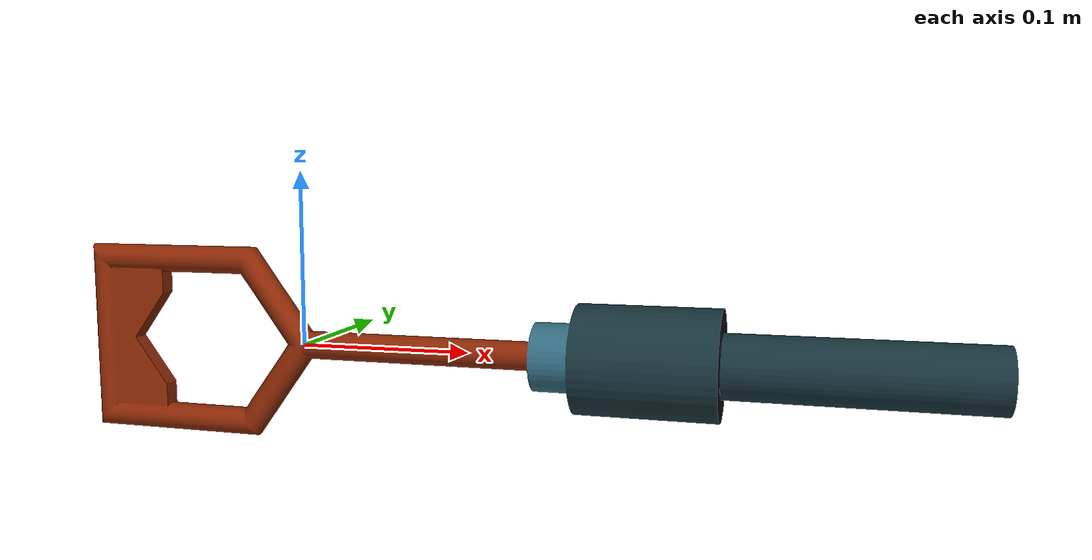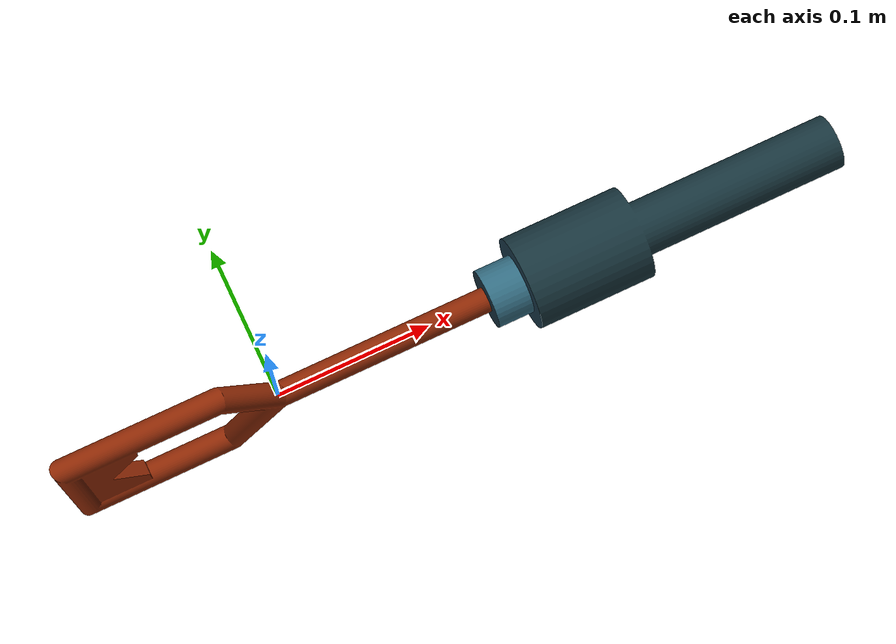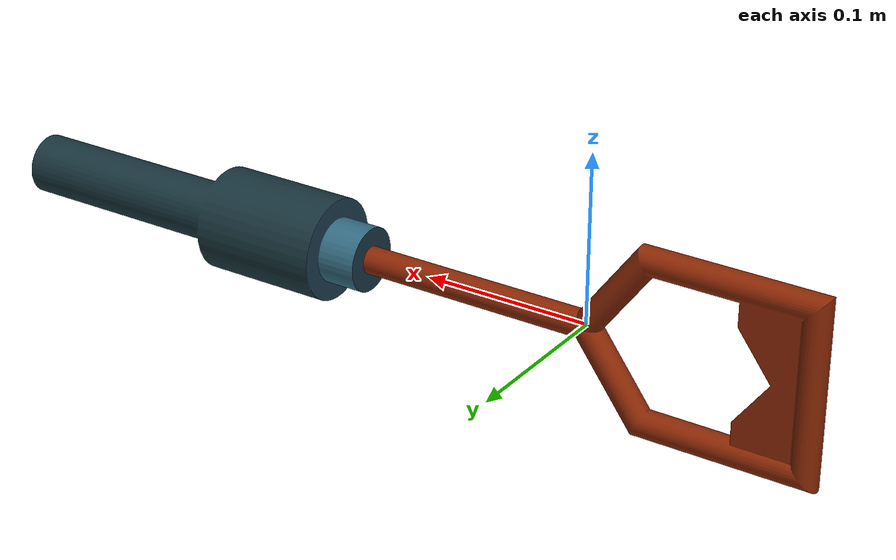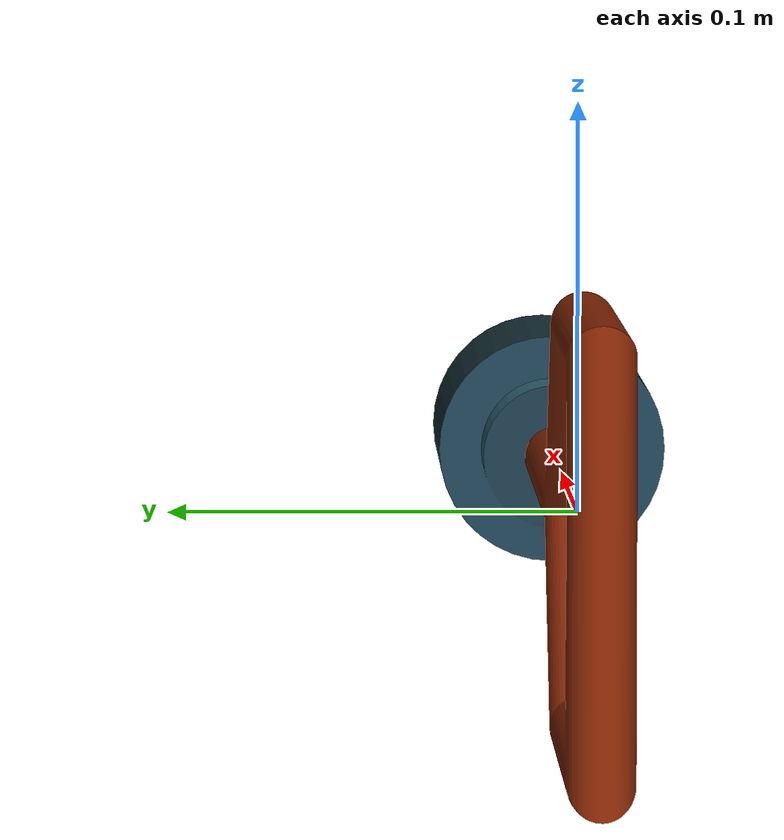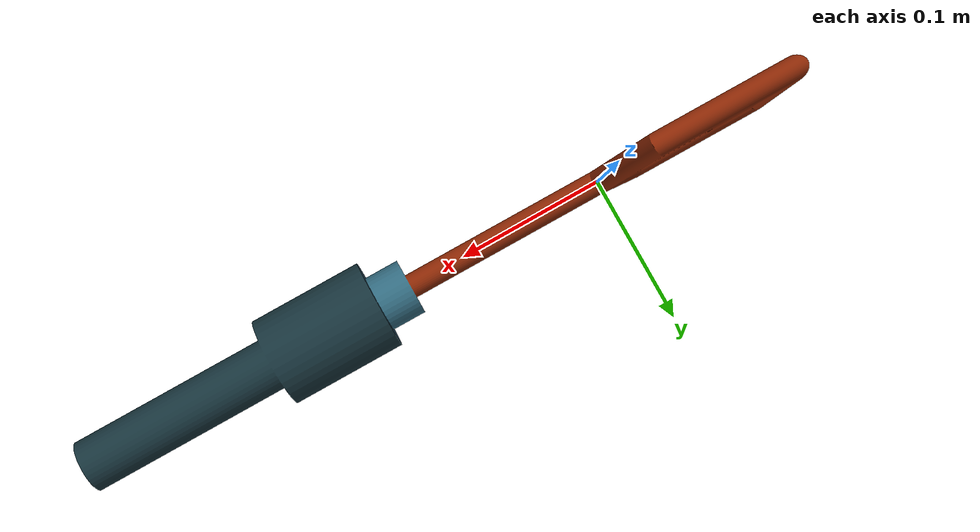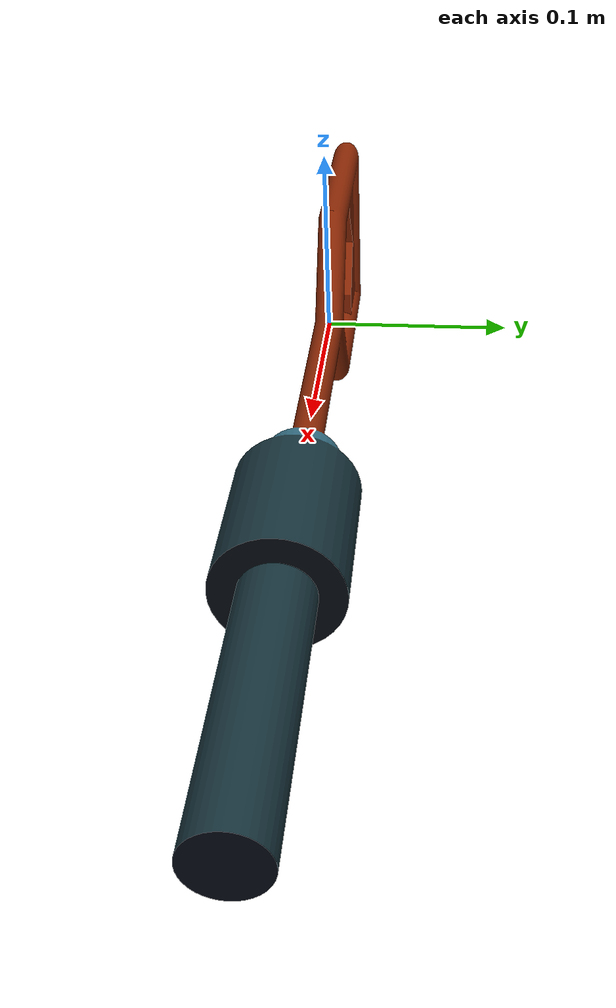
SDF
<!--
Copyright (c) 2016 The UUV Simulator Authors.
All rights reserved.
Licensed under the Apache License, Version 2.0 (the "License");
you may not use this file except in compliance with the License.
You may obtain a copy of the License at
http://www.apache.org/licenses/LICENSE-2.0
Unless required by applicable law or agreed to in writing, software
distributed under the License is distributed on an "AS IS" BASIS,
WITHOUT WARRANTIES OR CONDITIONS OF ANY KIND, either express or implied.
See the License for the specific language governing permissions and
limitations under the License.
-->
<?xml version="1.0" ?>
<sdf version="1.5">
  <model name="hot_stab">
    <link name="hot_stab">
      <pose>0 0 0 0 0 0</pose>
      <inertial>
        <mass>4.4</mass>
        <inertia>
          <ixx>0.005947072303333334</ixx>
          <iyy>0.10186918958333334</iyy>
          <izz>0.09857621605333333</izz>
          <ixy>0</ixy>
          <ixz>0</ixz>
          <iyz>0</iyz>
        </inertia>
        <pose>0.160875 0 0 0 0 0</pose>
      </inertial>

      <collision name="hot_stab_collision">
        <geometry>
          <mesh>
            <uri>model://hot_stab/meshes/HotStab.dae</uri>
          </mesh>
        </geometry>
      </collision>

      <visual name="hot_stab_visual">
        <geometry>
          <mesh>
            <uri>model://hot_stab/meshes/HotStab.dae</uri>
          </mesh>
        </geometry>
      </visual>
    </link>
  </model>
</sdf>
